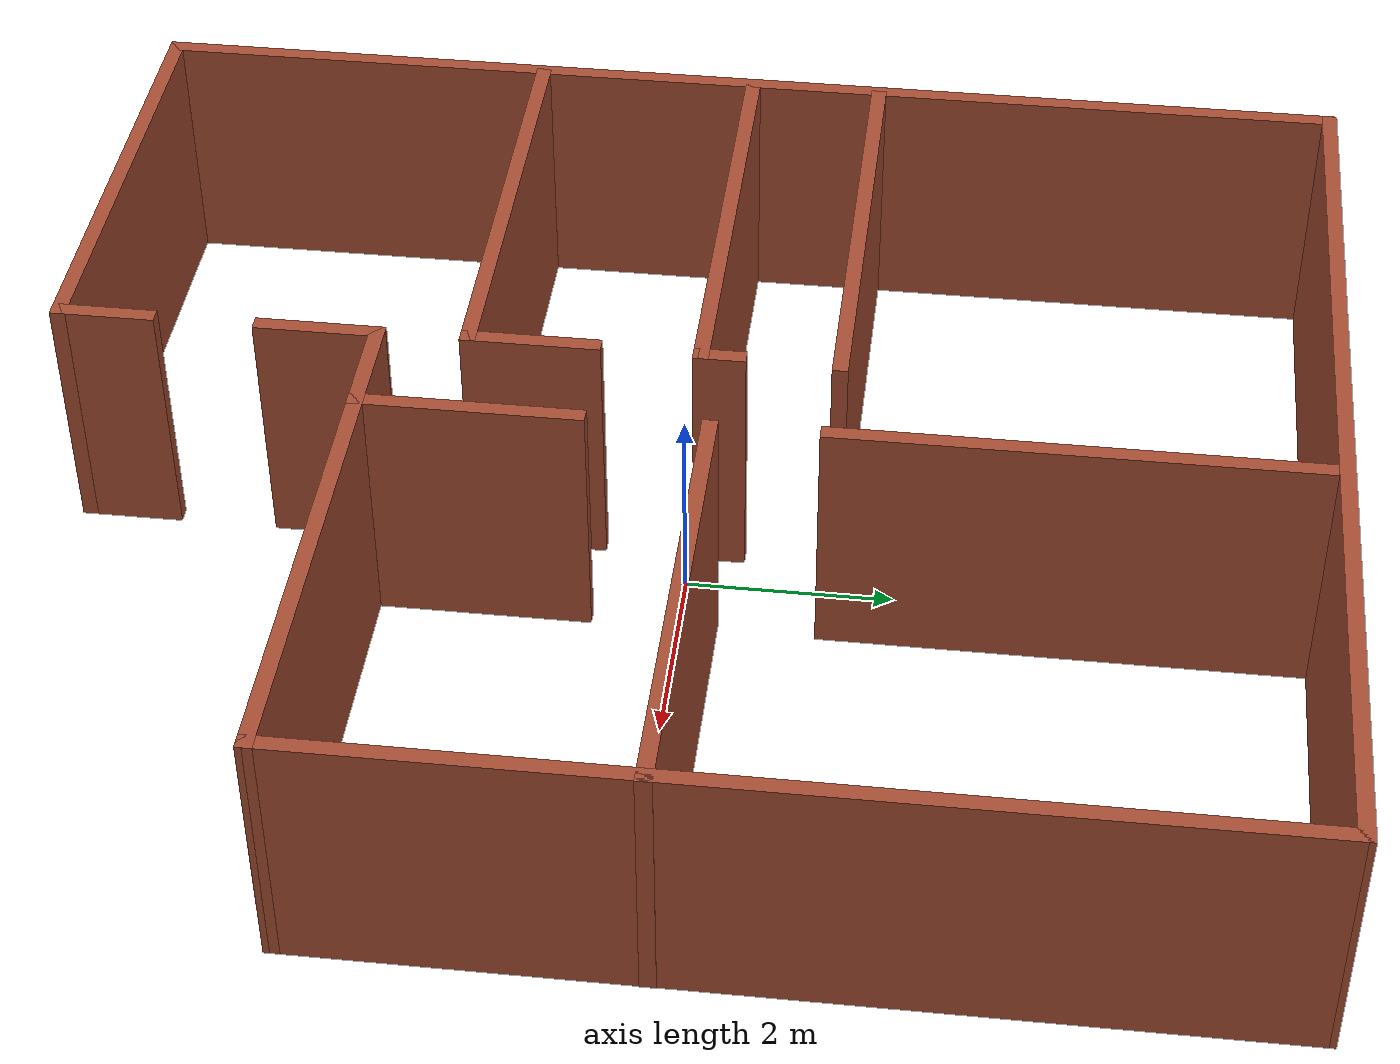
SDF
<?xml version='1.0'?>
<sdf version='1.7'>
  <model name='guimaraes_house'>
    <model name='guimaraes_house'>
      <pose>-1e-06 -5e-06 0 0 -0 0</pose>
      <link name='Wall_0'>
        <collision name='Wall_0_Collision'>
          <geometry>
            <box>
              <size>10.08 0.15 2.5</size>
            </box>
          </geometry>
          <pose>0 0 1.25 0 -0 0</pose>
        </collision>
        <visual name='Wall_0_Visual'>
          <pose>0 0 1.25 0 -0 0</pose>
          <geometry>
            <box>
              <size>10.08 0.15 2.5</size>
            </box>
          </geometry>
          <material>
            <script>
              <uri>file://media/materials/scripts/gazebo.material</uri>
              <name>Gazebo/Bricks</name>
            </script>
            <ambient>1 1 1 1</ambient>
          </material>
          <meta>
            <layer>0</layer>
          </meta>
        </visual>
        <pose>-0.004717 5.99004 0 0 -0 0</pose>
      </link>
      <link name='Wall_13'>
        <collision name='Wall_13_Collision'>
          <geometry>
            <box>
              <size>5.54 0.15 2.5</size>
            </box>
          </geometry>
          <pose>0 0 1.25 0 -0 0</pose>
        </collision>
        <visual name='Wall_13_Visual'>
          <pose>0 0 1.25 0 -0 0</pose>
          <geometry>
            <box>
              <size>5.54 0.15 2.5</size>
            </box>
          </geometry>
          <material>
            <script>
              <uri>file://media/materials/scripts/gazebo.material</uri>
              <name>Gazebo/Bricks</name>
            </script>
            <ambient>1 1 1 1</ambient>
          </material>
          <meta>
            <layer>0</layer>
          </meta>
        </visual>
        <pose>2.27428 -2.94496 0 0 -0 0</pose>
      </link>
      <link name='Wall_16'>
        <collision name='Wall_16_Collision'>
          <geometry>
            <box>
              <size>1.25 0.15 2.5</size>
            </box>
          </geometry>
          <pose>0 0 1.25 0 -0 0</pose>
        </collision>
        <visual name='Wall_16_Visual'>
          <pose>0 0 1.25 0 -0 0</pose>
          <geometry>
            <box>
              <size>1.25 0.15 2.5</size>
            </box>
          </geometry>
          <material>
            <script>
              <uri>file://media/materials/scripts/gazebo.material</uri>
              <name>Gazebo/Bricks</name>
            </script>
            <ambient>1 1 1 1</ambient>
          </material>
          <meta>
            <layer>0</layer>
          </meta>
        </visual>
        <pose>-0.420717 -3.49496 0 0 -0 -1.5708</pose>
      </link>
      <link name='Wall_18'>
        <collision name='Wall_18_Collision'>
          <geometry>
            <box>
              <size>2.19 0.15 2.5</size>
            </box>
          </geometry>
          <pose>0 0 1.25 0 -0 0</pose>
        </collision>
        <visual name='Wall_18_Visual'>
          <pose>0 0 1.25 0 -0 0</pose>
          <geometry>
            <box>
              <size>2.19 0.15 2.5</size>
            </box>
          </geometry>
          <material>
            <script>
              <uri>file://media/materials/scripts/gazebo.material</uri>
              <name>Gazebo/Bricks</name>
            </script>
            <ambient>1 1 1 1</ambient>
          </material>
          <meta>
            <layer>0</layer>
          </meta>
        </visual>
        <pose>0.571283 -1.92696 0 0 -0 1.5708</pose>
      </link>
      <link name='Wall_27'>
        <collision name='Wall_27_Collision'>
          <geometry>
            <box>
              <size>9.08493 0.15 2.5</size>
            </box>
          </geometry>
          <pose>0 0 1.25 0 -0 0</pose>
        </collision>
        <visual name='Wall_27_Visual'>
          <pose>0 0 1.25 0 -0 0</pose>
          <geometry>
            <box>
              <size>9.08493 0.15 2.5</size>
            </box>
          </geometry>
          <material>
            <script>
              <uri>file://media/materials/scripts/gazebo.material</uri>
              <name>Gazebo/Bricks</name>
            </script>
            <ambient>1 1 1 1</ambient>
          </material>
          <meta>
            <layer>0</layer>
          </meta>
        </visual>
        <pose>4.96478 1.52254 0 0 -0 1.5718</pose>
      </link>
      <link name='Wall_29'>
        <collision name='Wall_29_Collision'>
          <geometry>
            <box>
              <size>4.54 0.15 2.5</size>
            </box>
          </geometry>
          <pose>0 0 1.25 0 -0 0</pose>
        </collision>
        <visual name='Wall_29_Visual'>
          <pose>0 0 1.25 0 -0 0</pose>
          <geometry>
            <box>
              <size>4.54 0.15 2.5</size>
            </box>
          </geometry>
          <material>
            <script>
              <uri>file://media/materials/scripts/gazebo.material</uri>
              <name>Gazebo/Bricks</name>
            </script>
            <ambient>1 1 1 1</ambient>
          </material>
          <meta>
            <layer>0</layer>
          </meta>
        </visual>
        <pose>2.77528 0.298039 0 0 -0 3.14159</pose>
      </link>
      <link name='Wall_32'>
        <collision name='Wall_32_Collision'>
          <geometry>
            <box>
              <size>4.65 0.15 2.5</size>
            </box>
          </geometry>
          <pose>0 0 1.25 0 -0 0</pose>
        </collision>
        <visual name='Wall_32_Visual'>
          <pose>0 0 1.25 0 -0 0</pose>
          <geometry>
            <box>
              <size>4.65 0.15 2.5</size>
            </box>
          </geometry>
          <material>
            <script>
              <uri>file://media/materials/scripts/gazebo.material</uri>
              <name>Gazebo/Bricks</name>
            </script>
            <ambient>1 1 1 1</ambient>
          </material>
          <meta>
            <layer>0</layer>
          </meta>
        </visual>
        <pose>-2.71172 -2.08996 0 0 -0 0</pose>
      </link>
      <link name='Wall_34'>
        <collision name='Wall_34_Collision'>
          <geometry>
            <box>
              <size>1.33 0.15 2.5</size>
            </box>
          </geometry>
          <pose>0 0 1.25 0 -0 0</pose>
        </collision>
        <visual name='Wall_34_Visual'>
          <pose>0 0 1.25 0 -0 0</pose>
          <geometry>
            <box>
              <size>1.33 0.15 2.5</size>
            </box>
          </geometry>
          <material>
            <script>
              <uri>file://media/materials/scripts/gazebo.material</uri>
              <name>Gazebo/Bricks</name>
            </script>
            <ambient>1 1 1 1</ambient>
          </material>
          <meta>
            <layer>0</layer>
          </meta>
        </visual>
        <pose>-0.461717 -1.49996 0 0 -0 1.5708</pose>
      </link>
      <link name='Wall_36'>
        <collision name='Wall_36_Collision'>
          <geometry>
            <box>
              <size>4.67 0.15 2.5</size>
            </box>
          </geometry>
          <pose>0 0 1.25 0 -0 0</pose>
        </collision>
        <visual name='Wall_36_Visual'>
          <pose>0 0 1.25 0 -0 0</pose>
          <geometry>
            <box>
              <size>4.67 0.15 2.5</size>
            </box>
          </geometry>
          <material>
            <script>
              <uri>file://media/materials/scripts/gazebo.material</uri>
              <name>Gazebo/Bricks</name>
            </script>
            <ambient>1 1 1 1</ambient>
          </material>
          <meta>
            <layer>0</layer>
          </meta>
        </visual>
        <pose>-2.70172 0.100039 0 0 -0 0</pose>
      </link>
      <link name='Wall_39'>
        <collision name='Wall_39_Collision'>
          <geometry>
            <box>
              <size>0.5 0.15 2.5</size>
            </box>
          </geometry>
          <pose>0 0 1.25 0 -0 0</pose>
        </collision>
        <visual name='Wall_39_Visual'>
          <pose>0 0 1.25 0 -0 0</pose>
          <geometry>
            <box>
              <size>0.5 0.15 2.5</size>
            </box>
          </geometry>
          <material>
            <script>
              <uri>file://media/materials/scripts/gazebo.material</uri>
              <name>Gazebo/Bricks</name>
            </script>
            <ambient>1 1 1 1</ambient>
          </material>
          <meta>
            <layer>0</layer>
          </meta>
        </visual>
        <pose>-0.441717 0.275039 0 0 -0 1.5708</pose>
      </link>
      <link name='Wall_4'>
        <collision name='Wall_4_Collision'>
          <geometry>
            <box>
              <size>12.13 0.15 2.5</size>
            </box>
          </geometry>
          <pose>0 0 1.25 0 -0 0</pose>
        </collision>
        <visual name='Wall_4_Visual'>
          <pose>0 0 1.25 0 -0 0</pose>
          <geometry>
            <box>
              <size>12.13 0.15 2.5</size>
            </box>
          </geometry>
          <material>
            <script>
              <uri>file://media/materials/scripts/gazebo.material</uri>
              <name>Gazebo/Bricks</name>
            </script>
            <ambient>1 1 1 1</ambient>
          </material>
          <meta>
            <layer>0</layer>
          </meta>
        </visual>
        <pose>-4.96972 3.9e-05 0 0 -0 -1.5708</pose>
      </link>
      <link name='Wall_41'>
        <collision name='Wall_41_Collision'>
          <geometry>
            <box>
              <size>4.71 0.15 2.5</size>
            </box>
          </geometry>
          <pose>0 0 1.25 0 -0 0</pose>
        </collision>
        <visual name='Wall_41_Visual'>
          <pose>0 0 1.25 0 -0 0</pose>
          <geometry>
            <box>
              <size>4.71 0.15 2.5</size>
            </box>
          </geometry>
          <material>
            <script>
              <uri>file://media/materials/scripts/gazebo.material</uri>
              <name>Gazebo/Bricks</name>
            </script>
            <ambient>1 1 1 1</ambient>
          </material>
          <meta>
            <layer>0</layer>
          </meta>
        </visual>
        <pose>-2.69028 1.3996 0 0 -0 0</pose>
      </link>
      <link name='Wall_44'>
        <collision name='Wall_44_Collision'>
          <geometry>
            <box>
              <size>4.75 0.15 2.5</size>
            </box>
          </geometry>
          <pose>0 0 1.25 0 -0 0</pose>
        </collision>
        <visual name='Wall_44_Visual'>
          <pose>0 0 1.25 0 -0 0</pose>
          <geometry>
            <box>
              <size>4.75 0.15 2.5</size>
            </box>
          </geometry>
          <material>
            <script>
              <uri>file://media/materials/scripts/gazebo.material</uri>
              <name>Gazebo/Bricks</name>
            </script>
            <ambient>1 1 1 1</ambient>
          </material>
          <meta>
            <layer>0</layer>
          </meta>
        </visual>
        <pose>0.552283 3.67704 0 0 -0 -1.5708</pose>
      </link>
      <link name='Wall_6'>
        <collision name='Wall_6_Collision'>
          <geometry>
            <box>
              <size>4.70016 0.15 2.5</size>
            </box>
          </geometry>
          <pose>0 0 1.25 0 -0 0</pose>
        </collision>
        <visual name='Wall_6_Visual'>
          <pose>0 0 1.25 0 -0 0</pose>
          <geometry>
            <box>
              <size>4.70016 0.15 2.5</size>
            </box>
          </geometry>
          <material>
            <script>
              <uri>file://media/materials/scripts/gazebo.material</uri>
              <name>Gazebo/Bricks</name>
            </script>
            <ambient>1 1 1 1</ambient>
          </material>
          <meta>
            <layer>0</layer>
          </meta>
        </visual>
        <pose>-2.69466 -5.99002 0 0 -0 -2.5e-05</pose>
      </link>
      <link name='Wall_8'>
        <collision name='Wall_8_Collision'>
          <geometry>
            <box>
              <size>1 0.15 2.5</size>
            </box>
          </geometry>
          <pose>0 0 1.25 0 -0 0</pose>
        </collision>
        <visual name='Wall_8_Visual'>
          <pose>0 0 1.25 0 -0 0</pose>
          <geometry>
            <box>
              <size>1 0.15 2.5</size>
            </box>
          </geometry>
          <material>
            <script>
              <uri>file://media/materials/scripts/gazebo.material</uri>
              <name>Gazebo/Bricks</name>
            </script>
            <ambient>1 1 1 1</ambient>
          </material>
          <meta>
            <layer>0</layer>
          </meta>
        </visual>
        <pose>-0.419604 -5.56507 0 0 -0 1.5708</pose>
      </link>
      <static>1</static>
    </model>
    <static>0</static>
    <allow_auto_disable>1</allow_auto_disable>
  </model>
</sdf>
